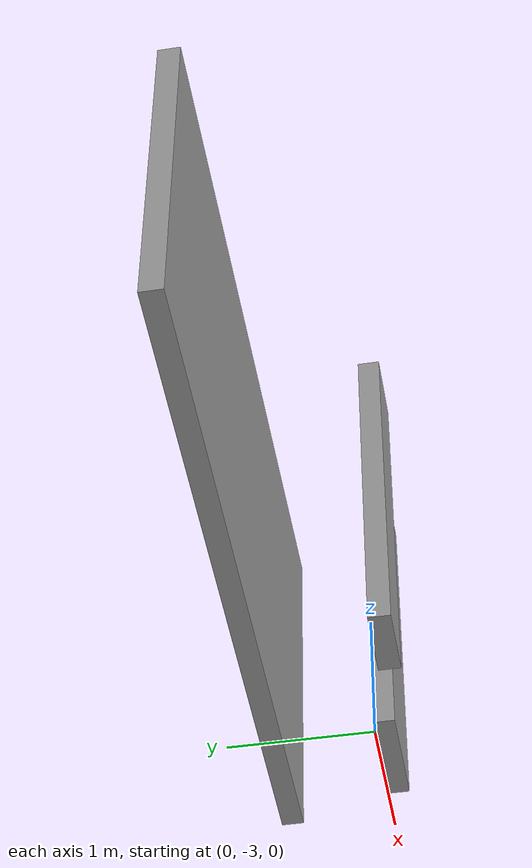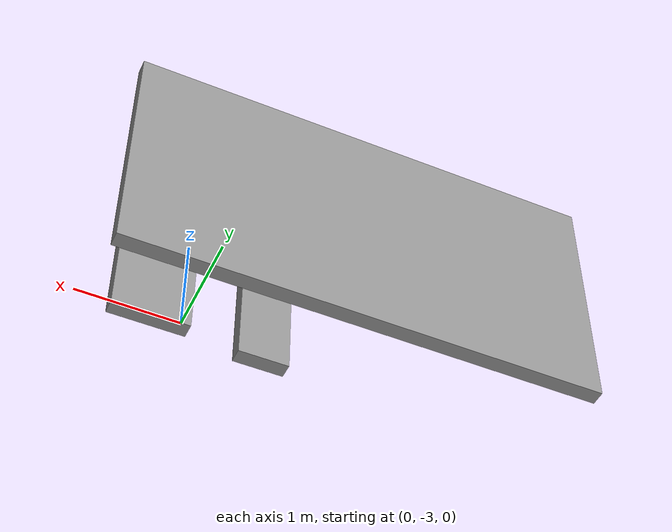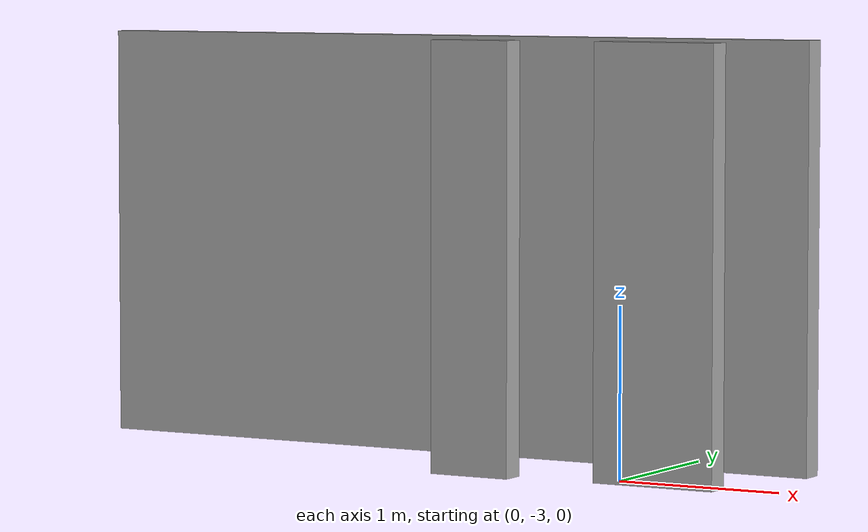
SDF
<?xml version='1.0'?>
<sdf version='1.6'>
  <model name='tunnel'>
    <pose frame=''>-1.5 -2.74 0 0 -0 0</pose>
    <link name='Wall_13'>
      <collision name='Wall_13_Collision'>
        <geometry>
          <box>
            <size>0.75 0.15 2.5</size>
          </box>
        </geometry>
        <pose frame=''>0 0 1.25 0 -0 0</pose>
      </collision>
      <visual name='Wall_13_Visual'>
        <pose frame=''>0 0 1.25 0 -0 0</pose>
        <geometry>
          <box>
            <size>0.75 0.15 2.5</size>
          </box>
        </geometry>
        <material>
          <script>
            <uri>file://media/materials/scripts/gazebo.material</uri>
            <name>Gazebo/Grey</name>
          </script>
          <ambient>1 1 1 1</ambient>
        </material>
      </visual>
      <pose frame=''>1.78 -0.33 0 0 -0 3.14159</pose>
    </link>
    <link name='Wall_17'>
      <collision name='Wall_17_Collision'>
        <geometry>
          <box>
            <size>4.75 0.15 2.5</size>
          </box>
        </geometry>
        <pose frame=''>0 0 1.25 0 -0 0</pose>
      </collision>
      <visual name='Wall_17_Visual'>
        <pose frame=''>0 0 1.25 0 -0 0</pose>
        <geometry>
          <box>
            <size>4.75 0.15 2.5</size>
          </box>
        </geometry>
        <material>
          <script>
            <uri>file://media/materials/scripts/gazebo.material</uri>
            <name>Gazebo/Grey</name>
          </script>
          <ambient>1 1 1 1</ambient>
        </material>
      </visual>
      <pose frame=''>0 0.44 0 0 -0 3.14159</pose>
    </link>
    <link name='Wall_8'>
      <collision name='Wall_8_Collision'>
        <geometry>
          <box>
            <size>0.5 0.15 2.5</size>
          </box>
        </geometry>
        <pose frame=''>0 0 1.25 0 -0 0</pose>
      </collision>
      <visual name='Wall_8_Visual'>
        <pose frame=''>0 0 1.25 0 -0 0</pose>
        <geometry>
          <box>
            <size>0.5 0.15 2.5</size>
          </box>
        </geometry>
        <material>
          <script>
            <uri>file://media/materials/scripts/gazebo.material</uri>
            <name>Gazebo/Grey</name>
          </script>
          <ambient>1 1 1 1</ambient>
        </material>
      </visual>
      <pose frame=''>0.655 -0.44 0 0 -0 0</pose>
    </link>
    <static>1</static>
  </model>
</sdf>
